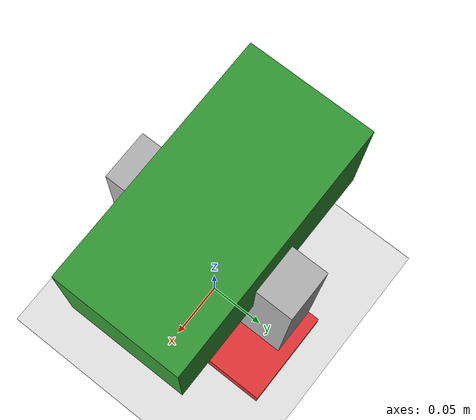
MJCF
<mujoco model="biped_template">
  <option timestep="0.002" gravity="0 0 -9.81"/>

  <visual>
    <map force="0.1" zfar="30"/>
    <rgba haze="0.15 0.25 0.35 1"/>
    <quality shadowsize="2048"/>
    <global offwidth="800" offheight="800"/>
  </visual>

  <default>
     <joint armature="0.01" damping="0.1"/>
     <geom solref="0.02 1" solimp="0.9 0.95 0.001"/>
  </default>
  <worldbody>
    <light pos="0 0 3" dir="0 0 -1" directional="true"/>
    <geom name="floor" type="plane" size="10 10 0.1" rgba="0.9 0.9 0.9 1" friction="1 0.005 0.0001"/>

    <body name="torso" pos="0 0 0.210">
      <joint name="root" type="free"/>
      <geom type="box" size="0.1 0.05 0.05" rgba="0.2 0.6 0.2 1" density="1000"/>

      <body name="leg_left" pos="0 0.06 0">
        <joint name="hip_left" type="hinge" axis="0 1 0" range="-45 45"/>
        <geom type="box" fromto="0 0 0  0 0 -0.15" size="0.02" rgba="0.7 0.7 0.7 1"/>
        <body name="foot_left" pos="0 0 -0.15">
             <geom type="box" size="0.04 0.03 0.01" pos="0.02 0 0" rgba="0.9 0.2 0.2 1"/>
        </body>
      </body>

      <body name="leg_right" pos="0 -0.06 0">
        <joint name="hip_right" type="hinge" axis="0 1 0" range="-45 45"/>
        <geom type="box" fromto="0 0 0  0 0 -0.15" size="0.02" rgba="0.7 0.7 0.7 1"/>
        <body name="foot_right" pos="0 0 -0.15">
             <geom type="box" size="0.04 0.03 0.01" pos="0.02 0 0" rgba="0.9 0.2 0.2 1"/>
        </body>
      </body>

    </body>
  </worldbody>

  <actuator>
    <position joint="hip_left" kp="50" dampratio="1.0"/>
    <position joint="hip_right" kp="50" dampratio="1.0"/>
  </actuator>

</mujoco>
